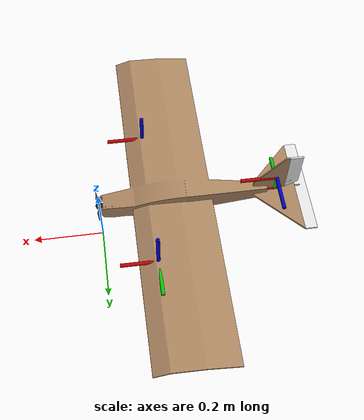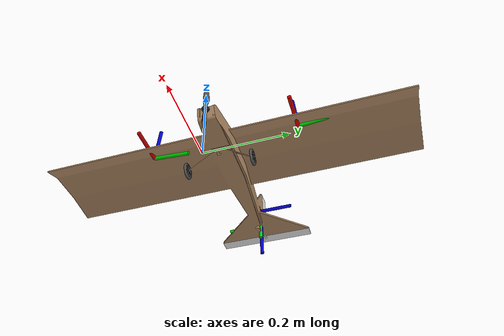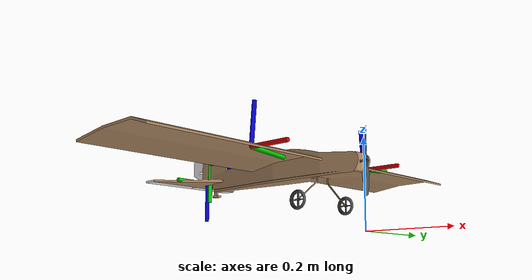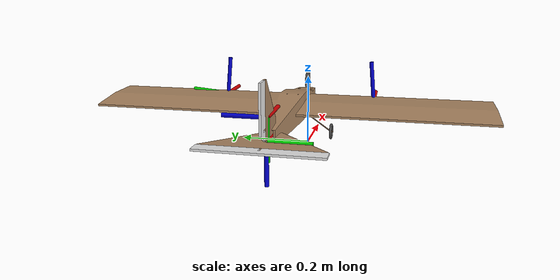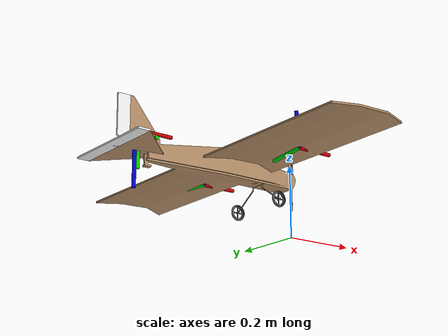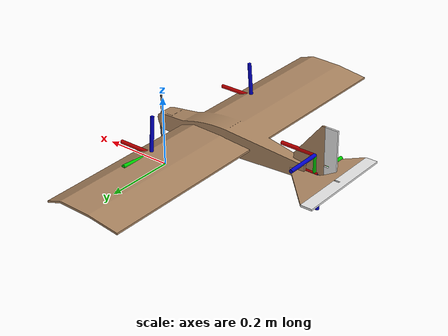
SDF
<?xml version='1.0'?>
<sdf version='1.6'>
  <model name="mini_fixedwing_08">
    <pose>0 0 0.15 0 0 0</pose>
    <link name='fuselage'>
      <inertial>
        <pose>-0.131 0 0 0 0 0</pose>
        <mass>0.227</mass>
        <inertia>
          <ixx>6e-3</ixx>
          <iyy>8e-3</iyy>
          <izz>1.4e-2</izz>
        </inertia>
      </inertial>
      <collision name='collision'>
        <geometry>
          <mesh>
            <uri>model://mini_fixedwing_08/meshes/stl/fuselage.stl</uri>
          </mesh>
        </geometry>
        <surface>
          <friction>
            <ode>
              <mu>0.2</mu>
              <mu2>0.2</mu2>
            </ode>
          </friction>
          <contact>
            <ode>
              <max_vel>0.1</max_vel>
              <min_depth>0.001</min_depth>
            </ode>
          </contact>
        </surface>
      </collision>
      <visual name='visual'>
        <geometry>
          <mesh>
            <uri>model://mini_fixedwing_08/meshes/stl/fuselage.stl</uri>
          </mesh>
        </geometry>
        <material>
          <ambient>0.678 0.529 0.384 1</ambient>
          <diffuse>0.678 0.529 0.384 1</diffuse>
          <specular>0.678 0.529 0.384 1</specular>
        </material>
      </visual>

      <visual name='cp_vtail'>
        <pose>-0.49 0 0.05 -1.57 0 0</pose>
        <geometry>
          <mesh>
            <scale>0.1 0.1 0.1</scale>
            <uri>model://mini_fixedwing_11/meshes/axes.dae</uri> </mesh>
        </geometry>
      </visual>
      <visual name='cp_htail'>
        <pose>-0.5 0 0 3.14 0 0</pose>
        <geometry>
          <mesh>
            <scale>0.1 0.1 0.1</scale>
            <uri>model://mini_fixedwing_11/meshes/axes.dae</uri> </mesh>
        </geometry>
      </visual>
      <visual name='cp_wing_left'>
        <pose>-0.14 0.2 0.02 0.087 0 0</pose>
        <geometry>
          <mesh>
            <scale>0.1 0.1 0.1</scale>
            <uri>model://mini_fixedwing_11/meshes/axes.dae</uri> </mesh>
        </geometry>
      </visual>
      <visual name='cp_wing_right'>
        <pose>-0.14 -0.2 0.02 -0.087 0 0</pose>
        <geometry>
          <mesh>
            <scale>0.1 0.1 0.1</scale>
            <uri>model://mini_fixedwing_11/meshes/axes.dae</uri> </mesh>
        </geometry>
      </visual>

    </link>

    <link name='wheel_left'>
      <inertial>
        <pose>-0.114 0.085 -0.081</pose>
        <mass>0.002</mass>
        <inertia>
          <ixx>2.27e-5</ixx>
          <iyy>1.16e-5</iyy>
          <izz>1.16e-5</izz>
        </inertia>
      </inertial>
      <visual name='visual'>
        <cast_shadows>0</cast_shadows>
        <geometry>
          <mesh>
            <uri>model://mini_fixedwing_08/meshes/stl/wheel_left.stl</uri>
          </mesh>
        </geometry>
        <material>
          <script>
            <name>Gazebo/DarkGrey</name>
          </script>
        </material>
      </visual>
      <collision name='collision'>
        <pose>-0.114 0.085 -0.081 1.57 0 0</pose>
        <geometry>
          <cylinder>
            <radius>0.025</radius>
            <length>0.00635</length>
          </cylinder>
        </geometry>
        <surface>
          <friction>
            <ode>
              <mu>0.3</mu>
              <mu2>0.3</mu2>
            </ode>
          </friction>
          <contact>
            <ode>
              <max_vel>0.1</max_vel>
              <min_depth>0.001</min_depth>
            </ode>
          </contact>
        </surface>
      </collision>

    </link>

    <joint name='wheel_left_joint' type='revolute'>
      <pose>-0.114 0.085 -0.081 0 0 0</pose>
      <parent>fuselage</parent>
      <child>wheel_left</child>
      <axis>
        <xyz>0 1 0</xyz>
        <dynamics>
          <damping>0.1</damping>
        </dynamics>
      </axis>
      <physics>
        <ode>
          <implicit_spring_damper>1</implicit_spring_damper>
        </ode>
      </physics>
    </joint>

    <link name='wheel_right'>
      <inertial>
        <pose>-0.114 -0.085 -0.081 0 0 0</pose>
        <mass>0.002</mass>
        <inertia>
          <ixx>2.27e-5</ixx>
          <iyy>1.16e-5</iyy>
          <izz>1.16e-5</izz>
        </inertia>
      </inertial>
      <visual name='visual'>
        <cast_shadows>0</cast_shadows>
        <geometry>
          <mesh>
            <uri>model://mini_fixedwing_08/meshes/stl/wheel_right.stl</uri>
          </mesh>
        </geometry>
        <material>
          <script>
            <name>Gazebo/DarkGrey</name>
          </script>
        </material>
      </visual>
      <collision name='collision'>
        <pose>-0.114 -0.085 -0.081 1.57 0 0</pose>
        <geometry>
          <cylinder>
            <radius>0.025</radius>
            <length>0.00635</length>
          </cylinder>
        </geometry>
        <surface>
          <friction>
            <ode>
              <mu>0.3</mu>
              <mu2>0.3</mu2>
            </ode>
          </friction>
          <contact>
            <ode>
              <max_vel>0.1</max_vel>
              <min_depth>0.001</min_depth>
            </ode>
          </contact>
        </surface>
      </collision>

    </link>

    <joint name='wheel_right_joint' type='revolute'>
      <pose>-0.114 -0.085 -0.081 0 0 0</pose>
      <parent>fuselage</parent>
      <child>wheel_right</child>
      <axis>
        <xyz>0 1 0</xyz>
        <dynamics>
          <damping>0.1</damping>
        </dynamics>
      </axis>
      <physics>
        <ode>
          <implicit_spring_damper>1</implicit_spring_damper>
        </ode>
      </physics>
    </joint>

    <link name='rudder'>
      <inertial>
        <mass>0.00157</mass>
        <pose>-0.535 0 0.07</pose>
        <inertia>
          <ixx>1.6e-6</ixx>
          <iyy>1.52e-5</iyy>
          <izz>1.33e-7</izz>
        </inertia>
      </inertial>
      <visual name='visual'>
        <cast_shadows>0</cast_shadows>
        <geometry>
          <mesh>
            <uri>model://mini_fixedwing_08/meshes/stl/rudder.stl</uri>
          </mesh>
        </geometry>
        <material>
          <script>
            <name>Gazebo/White</name>
          </script>
        </material>
      </visual>
    </link>

    <joint name='rudder_joint' type='revolute'>
      <pose>-0.515 0 0.07</pose>
      <parent>fuselage</parent>
      <child>rudder</child>
      <axis>
        <xyz>0 0 1</xyz>
        <dynamics>
          <damping>0.1</damping>
        </dynamics>
        <limit>
          <lower>-0.5</lower>
          <upper>0.5</upper>
        </limit>
      </axis>
      <physics>
        <ode>
          <implicit_spring_damper>1</implicit_spring_damper>
        </ode>
      </physics>
    </joint>

    <link name='elevator'>
      <inertial>
        <mass>0.0027</mass>
        <pose>-0.565 0 0</pose>
        <inertia>
          <ixx>1.33e-5</ixx>
          <iyy>1.03e-3</iyy>
          <izz>1.05e-3</izz>
        </inertia>
      </inertial>
      <visual name='visual'>
        <cast_shadows>0</cast_shadows>
        <geometry>
          <mesh>
            <uri>model://mini_fixedwing_08/meshes/stl/elevator.stl</uri>
          </mesh>
        </geometry>
        <material>
          <script>
            <name>Gazebo/White</name>
          </script>
        </material>
      </visual>
    </link>

    <joint name='elevator_joint' type='revolute'>
      <pose>-0.547 0 0</pose>
      <parent>fuselage</parent>
      <child>elevator</child>
      <axis>
        <xyz>0 1 0</xyz>
        <dynamics>
          <damping>0.1</damping>
        </dynamics>
        <limit>
          <lower>-0.5</lower>
          <upper>0.5</upper>
        </limit>
      </axis>
      <physics>
        <ode>
          <implicit_spring_damper>1</implicit_spring_damper>
        </ode>
      </physics>
    </joint>

    <link name='propeller'>
      <inertial>
        <mass>0.001</mass>
        <inertia>
          <ixx>1e-6</ixx>
          <iyy>1e-6</iyy>
          <izz>1e-6</izz>
        </inertia>
      </inertial>
      <visual name='visual'>
        <cast_shadows>0</cast_shadows>
        <geometry>
          <mesh>
            <uri>model://mini_fixedwing_08/meshes/stl/propeller.stl</uri>
          </mesh>
        </geometry>
        <material>
          <script>
            <name>Gazebo/DarkGrey</name>
          </script>
        </material>
      </visual>
    </link>

    <joint name='propeller_joint' type='revolute'>
      <parent>fuselage</parent>
      <child>propeller</child>
      <axis>
        <xyz>1 0 0</xyz>
      </axis>
    </joint>

    <include>
      <uri>model://gps</uri>
      <pose>0 0 0 0 0 0</pose>
      <name>gps</name>
    </include>
    <joint name='gps_joint' type='fixed'>
      <child>gps::link</child>
      <parent>fuselage</parent>
    </joint>

    <plugin name="vtail" filename="libLiftDragPlugin2.so">
      <pose>-0.49 0 0.05 -1.57 0 0</pose>
      <cL0>0</cL0>
      <cLa>3.034</cLa>
      <cm0>0</cm0>
      <cma>-3.9666</cma>
      <cD0>0.03</cD0>
      <kcDcL>0.1</kcDcL>
      <alpha_stall>0.288</alpha_stall>
      <cLa_stall>-3.85</cLa_stall>
      <cma_stall>-0.234</cma_stall>
      <!--Rudder is very small currenlty, hard to turn-->
      <area>0.06</area>
      <air_density>1.2041</air_density>
      <link_name>fuselage</link_name>
      <control_joint_name>rudder_joint</control_joint_name>
      <control_joint_rad_to_cL>1.0</control_joint_rad_to_cL>
      <control_joint_rad_to_cm>-0.25</control_joint_rad_to_cm>
    </plugin>

    <plugin name="htail" filename="libLiftDragPlugin2.so">
      <pose>-0.5 0 0 3.14 0 0</pose>
      <cL0>0</cL0>
      <cLa>3.33</cLa>
      <cm0>0</cm0>
      <cma>-4.3344</cma>
      <cD0>0.03</cD0>
      <kcDcL>0.1</kcDcL>
      <alpha_stall>0.2296</alpha_stall>
      <cLa_stall>-3.85</cLa_stall>
      <cma_stall>-0.234</cma_stall>
      <area>0.033</area>
      <air_density>1.2041</air_density>
      <link_name>fuselage</link_name>
      <control_joint_name>elevator_joint</control_joint_name>
      <control_joint_rad_to_cL>1.0</control_joint_rad_to_cL>
      <control_joint_rad_to_cm>-0.25</control_joint_rad_to_cm>
    </plugin>

    <plugin name="wing_left" filename="libLiftDragPlugin2.so">
      <!--You need a lot more dihedral for a rudder controlled plane-->
      <pose>-0.14 0.2 0.02 0.17 0 0</pose>
      <cL0>0.1529</cL0>
      <cLa>3.95</cLa>
      <!--check cm0-->
      <cm0>0</cm0>
      <cma>-0.1749</cma>
      <cD0>0.03</cD0>
      <kcDcL>0.1</kcDcL>
      <alpha_stall>0.3142</alpha_stall>
      <cLa_stall>-0.3934</cLa_stall>
      <cma_stall>-0.3084</cma_stall>
      <area>0.11</area>
      <air_density>1.2041</air_density>
      <link_name>fuselage</link_name>
      <verbose>0</verbose>
    </plugin>

    <plugin name="wing_right" filename="libLiftDragPlugin2.so">
      <!--You need a lot more dihedral for a rudder controlled plane-->
      <pose>-0.14 -0.2 0.02 -0.17 0 0</pose>
      <cL0>0.1529</cL0>
      <cLa>3.95</cLa>
      <!--check cm0-->
      <cm0>0</cm0>
      <cma>-0.1749</cma>
      <cD0>0.03</cD0>
      <kcDcL>0.1</kcDcL>
      <alpha_stall>0.3142</alpha_stall>
      <cLa_stall>-0.3934</cLa_stall>
      <cma_stall>-0.3084</cma_stall>
      <area>0.11</area>
      <air_density>1.2041</air_density>
      <link_name>fuselage</link_name>
      <verbose>0</verbose>
    </plugin>

    <!--Start PX4 autopilot-->

    <link name='imu_link'>
      <pose>-0.131 0 0 0 0 0</pose>
      <inertial>
        <mass>0.001</mass>
        <inertia>
          <ixx>1e-05</ixx>
          <iyy>1e-05</iyy>
          <izz>1e-05</izz>
        </inertia>
      </inertial>
    </link>

    <joint name='imu_joint' type='revolute'>
      <child>imu_link</child>
      <parent>fuselage</parent>
      <axis>
        <xyz>1 0 0</xyz>
        <limit>
          <lower>0</lower>
          <upper>0</upper>
          <effort>0</effort>
          <velocity>0</velocity>
        </limit>
        <dynamics>
          <spring_reference>0</spring_reference>
          <spring_stiffness>0</spring_stiffness>
        </dynamics>
        <use_parent_model_frame>1</use_parent_model_frame>
      </axis>
    </joint>

    <link name='airspeed_link'>
      <pose>0 0 0 0 0 0</pose>
      <inertial>
        <pose>0 0 0 0 0 0</pose>
        <mass>0.015</mass>
        <inertia>
          <ixx>1e-05</ixx>
          <ixy>0</ixy>
          <ixz>0</ixz>
          <iyy>1e-05</iyy>
          <iyz>0</iyz>
          <izz>1e-05</izz>
        </inertia>
      </inertial>
    </link>
    <joint name='airspeed_joint' type='revolute'>
      <child>airspeed_link</child>
      <parent>fuselage</parent>
      <axis>
        <xyz>1 0 0</xyz>
        <limit>
          <lower>0</lower>
          <upper>0</upper>
          <effort>0</effort>
          <velocity>0</velocity>
        </limit>
        <dynamics>
          <spring_reference>0</spring_reference>
          <spring_stiffness>0</spring_stiffness>
        </dynamics>
        <use_parent_model_frame>1</use_parent_model_frame>
      </axis>
    </joint>

    <plugin name='gazebo_imu_plugin' filename='libgazebo_imu_plugin.so'>
      <robotNamespace></robotNamespace>
      <linkName>imu_link</linkName>
      <imuTopic>/imu</imuTopic>
      <gyroscopeNoiseDensity>0.0003394</gyroscopeNoiseDensity>
      <gyroscopeRandomWalk>3.8785e-05</gyroscopeRandomWalk>
      <gyroscopeBiasCorrelationTime>1000.0</gyroscopeBiasCorrelationTime>
      <gyroscopeTurnOnBiasSigma>0.0087</gyroscopeTurnOnBiasSigma>
      <accelerometerNoiseDensity>0.004</accelerometerNoiseDensity>
      <accelerometerRandomWalk>0.006</accelerometerRandomWalk>
      <accelerometerBiasCorrelationTime>300.0</accelerometerBiasCorrelationTime>
      <accelerometerTurnOnBiasSigma>0.196</accelerometerTurnOnBiasSigma>
    </plugin>

    <plugin name='groundtruth_plugin' filename='libgazebo_groundtruth_plugin.so'>
      <robotNamespace/>
    </plugin>

    <plugin name='magnetometer_plugin' filename='libgazebo_magnetometer_plugin.so'>
      <robotNamespace/>
      <pubRate>100</pubRate>
      <noiseDensity>0.0004</noiseDensity>
      <randomWalk>6.4e-06</randomWalk>
      <biasCorrelationTime>600</biasCorrelationTime>
      <magTopic>/mag</magTopic>
    </plugin>

    <plugin name='barometer_plugin' filename='libgazebo_barometer_plugin.so'>
      <robotNamespace/>
      <pubRate>50</pubRate>
      <baroTopic>/baro</baroTopic>
    </plugin>

    <plugin name='airspeed_plugin' filename='libgazebo_airspeed_plugin.so'>
      <robotNamespace/>
      <linkName>airspeed_link</linkName>
    </plugin>

    <plugin name='motor_plugin' filename='libMotorPlugin.so'>
      <gztopic>/throttle1</gztopic>
      <joint_name>propeller_joint</joint_name>
      <prop_name>propeller</prop_name>
      <diameter>6</diameter>
      <ct>0.1025  -0.0258 0.2714  -0.6997 0.359</ct>
      <cp>0.0537  0.0096  0.2053  -0.4276 0.1702</cp>
      <kV>2300</kV>
      <i0>0.55</i0>
      <iMax>30</iMax>
      <r0>0.2</r0>
      <battV>11.1</battV>
      <capacity>850</capacity>
      <axis_num>0</axis_num>
      <motor_eff>0.7</motor_eff>
      <verbose>1</verbose>
    </plugin>

    <plugin name='mavlink_interface' filename='libgazebo_mavlink_interface.so'>
      <robotNamespace></robotNamespace>
      <imuSubTopic>/imu</imuSubTopic>

      <magSubTopic>/mag</magSubTopic>
      <baroSubTopic>/baro</baroSubTopic>
      <mavlink_addr>INADDR_ANY</mavlink_addr>
      <mavlink_udp_port>14560</mavlink_udp_port>
      <serialEnabled>false</serialEnabled>
      <serialDevice>/dev/ttyACM0</serialDevice>
      <baudRate>921600</baudRate>
      <qgc_addr>INADDR_ANY</qgc_addr>
      <qgc_udp_port>14550</qgc_udp_port>
      <sdk_addr>INADDR_ANY</sdk_addr>
      <sdk_udp_port>14540</sdk_udp_port>
      <hil_mode>false</hil_mode>
      <hil_state_level>false</hil_state_level>
      <enable_lockstep>true</enable_lockstep>
      <use_tcp>true</use_tcp>
      <motorSpeedCommandPubTopic>/gazebo/command/motor_speed</motorSpeedCommandPubTopic>
      <control_channels>
        <channel name="rudder">
          <input_index>5</input_index>
          <input_offset>0</input_offset>
          <input_scaling>-0.4</input_scaling>
          <zero_position_disarmed>0</zero_position_disarmed>
          <zero_position_armed>0</zero_position_armed>
          <joint_control_type>position</joint_control_type>
          <joint_name>rudder_joint</joint_name>
          <joint_control_pid>
            <p>10</p>
            <i>0</i>
            <d>0</d>
            <iMax>0</iMax>
            <iMin>0</iMin>
            <cmdMax>0.4</cmdMax>
            <cmdMin>-0.4</cmdMin>
          </joint_control_pid>
        </channel>
        <channel name="puller">
          <input_index>4</input_index>
          <input_offset>0</input_offset>
          <input_scaling>1</input_scaling>
          <zero_position_disarmed>0</zero_position_disarmed>
          <zero_position_armed>0</zero_position_armed>
          <joint_control_type>position_gztopic</joint_control_type>
          <gztopic>/throttle1</gztopic>
          <joint_name>propeller_joint</joint_name>
        </channel>
        <channel name="elevator">
          <input_index>7</input_index>
          <input_offset>0</input_offset>
          <input_scaling>0.28</input_scaling>
          <zero_position_disarmed>0</zero_position_disarmed>
          <zero_position_armed>0</zero_position_armed>
          <joint_control_type>position</joint_control_type>
          <joint_name>elevator_joint</joint_name>
          <joint_control_pid>
            <p>10</p>
            <i>0</i>
            <d>0</d>
            <iMax>0</iMax>
            <iMin>0</iMin>
            <cmdMax>0.28</cmdMax>
            <cmdMin>-0.28</cmdMin>
          </joint_control_pid>
        </channel>
      </control_channels>

    </plugin>
  </model>

</sdf>

<!-- vim: set et fenc=utf-8 ft=xml ff=unix sts=0 sw=2 ts=2 : -->

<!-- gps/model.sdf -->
<sdf version="1.6">
  <model name="gps">
    <link name="link">
      <pose>0 0 0 0 0 0</pose>
      <inertial>
        <pose>0 0 0 0 0 0</pose>
        <mass>0.015</mass>
        <inertia>
          <ixx>1e-05</ixx>
          <ixy>0</ixy>
          <ixz>0</ixz>
          <iyy>1e-05</iyy>
          <iyz>0</iyz>
          <izz>1e-05</izz>
        </inertia>
      </inertial>
      <visual name="visual">
        <geometry>
          <cylinder>
            <radius>0.01</radius>
            <length>0.002</length>
          </cylinder>
        </geometry>
        <material>
          <script>
            <name>Gazebo/Black</name>
            <uri>file://usr/share/gz/gz-sim8/media/gazebo.material</uri>
          </script>
        </material>
      </visual>
      <sensor name="gps" type="gps">
        <pose>0 0 0 0 0 0</pose>
        <update_rate>5.0</update_rate>
        <always_on>true</always_on>
        <visualize>false</visualize>
        <!-- GpsSensor noise currently not used -->
        <plugin name="gps_plugin" filename="libgazebo_gps_plugin.so">
          <robotNamespace></robotNamespace>
          <gpsNoise>true</gpsNoise>
          <gpsXYRandomWalk>2.0</gpsXYRandomWalk>
          <gpsZRandomWalk>4.0</gpsZRandomWalk>
          <gpsXYNoiseDensity>2.0e-4</gpsXYNoiseDensity>
          <gpsZNoiseDensity>4.0e-4</gpsZNoiseDensity>
          <gpsVXYNoiseDensity>0.2</gpsVXYNoiseDensity>
          <gpsVZNoiseDensity>0.4</gpsVZNoiseDensity>
        </plugin>
      </sensor>
    </link>
  </model>
</sdf>
